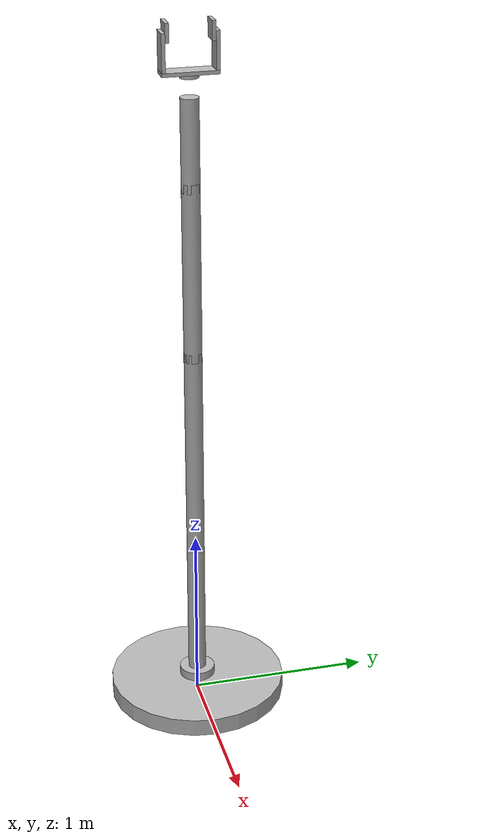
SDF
<?xml version='1.0'?>
<sdf version='1.4'>
  <model name="arm_robot">
  <static>false</static>
  <self_collide>1</self_collide>

   <link name='base'>
            <pose>0 0 .05 0 0 0</pose>
            <inertial>
            <mass>50</mass>
            </inertial>

            <collision name='collision'>
              <geometry>
                <cylinder>
                  <radius>0.5</radius>
                  <length>.1</length>
                </cylinder>
              </geometry>
            </collision>

            <visual name='visual'>
              <geometry>
              <cylinder>
               <radius>0.5</radius>
                <length>.1</length>
                </cylinder>
              </geometry>
            </visual>
    </link>

    <joint name="arm1_base_joint" type="revolute">
        <parent>base</parent>
        <child>arm1</child>
        <pose>0 0 -0.025 0 0 0</pose>
        <axis>
          <xyz>0 0 1</xyz>
          <dynamics>
                    <damping>2.0</damping>
                    <friction>0.7</friction>
                </dynamics>
                <limit>
                    <effort>100</effort>
                    <velocity>1.0</velocity>
                </limit>
        </axis>

    </joint>

    <link name='arm1'>
            <pose>0 0 .125 0 0 0</pose>
            <inertial>
                <mass>.05</mass>
            </inertial>

            <collision name='collision'>
              <geometry>
                <cylinder>
                  <radius>0.1</radius>
                  <length>.05</length>
                </cylinder>
          </geometry>
            </collision>

            <visual name='visual'>
              <geometry>
              <cylinder>
               <radius>0.1</radius>
                <length>.05</length>
                </cylinder>
              </geometry>
            </visual>
    </link>

    <!--dynamics>> damping=constanct coefficient, friction, limit=lower, upper, effort, velocity-->

     <link name='arm2'>
            <pose>0 0 1.15 0 0 0</pose>
             <inertial>
                <mass>0.5</mass>
            </inertial>
            <collision name='collision'>
              <geometry>
                <cylinder>
                  <radius>0.05</radius>
                  <length>2</length>
                </cylinder>
              </geometry>
            </collision>

            <visual name='visual'>
              <geometry>
              <cylinder>
               <radius>0.05</radius>
                <length>2</length>
                </cylinder>
              </geometry>
            </visual>
      </link>

      <joint name="arm1_arm2_joint" type="revolute">
        <parent>arm1</parent>
        <child>arm2</child>
        <pose>0 0 -1 0 0 0</pose>
        <axis>
          <xyz>1 0 0</xyz>
            <dynamics>
                    <damping>1.0</damping>
                    <friction>0.3</friction>
                </dynamics>
                <limit>
                    <lower>-1.0</lower>
                    <upper>1.0</upper>
                    <effort>100</effort>
                    <velocity>1.0</velocity>
                </limit>
        </axis>
    </joint>

     <link name='arm3'>
            <pose>0 0 2.6 0 0 0</pose>
             <inertial>
                <mass>0.25</mass>
            </inertial>
            <collision name='collision'>
              <geometry>
                <cylinder>
                  <radius>0.05</radius>
                  <length>1</length>
                </cylinder>
              </geometry>
            </collision>

            <visual name='visual'>
              <geometry>
              <cylinder>
               <radius>0.05</radius>
                <length>1</length>
                </cylinder>
              </geometry>
            </visual>
      </link>

      <joint name="arm2_arm3_joint" type="revolute">
        <parent>arm2</parent>
        <child>arm3</child>
        <pose>0 0 -0.5 0 0 0</pose>
        <axis>
          <xyz>1 0 0</xyz>
           <dynamics>
                    <damping>1.0</damping>
                    <friction>0.3</friction>
                </dynamics>
                <limit>
                    <effort>100</effort>
                    <velocity>1.0</velocity>
                </limit>
        </axis>

    </joint>

       <link name='arm4'>
            <pose>0 0 3.3 0 0 0</pose>
            <inertial>
                <mass>.125</mass>
            </inertial>

            <collision name='collision'>
              <geometry>
                <cylinder>
                  <radius>0.05</radius>
                  <length>0.5</length>
                </cylinder>
              </geometry>
            </collision>

            <visual name='visual'>
              <geometry>
              <cylinder>
               <radius>0.05</radius>
                <length>0.5</length>
                </cylinder>
              </geometry>
            </visual>
      </link>

      <joint name="arm3_arm4_joint" type="revolute">
        <parent>arm3</parent>
        <child>arm4</child>
        <pose>0 0 -0.25 0 0 0</pose>
        <axis>
          <xyz>1 0 0</xyz>
          <dynamics>
                    <damping>1.0</damping>
                    <friction>0.3</friction>
                </dynamics>
                <limit>
                    <effort>100</effort>
                    <velocity>1.0</velocity>
                </limit>
        </axis>
    </joint>

    <link name="arm5">
            <pose>0 0 3.66 0 0 0</pose>
            <inertial>
                <mass>.005</mass>
            </inertial>
            <collision name="collision">
                <geometry>
                    <cylinder>
                        <radius>.05</radius>
                        <length>.02</length>
                    </cylinder>
                </geometry>
            </collision>
            <visual name="visual">
                <geometry>
                    <cylinder>
                        <radius>.05</radius>
                        <length>.02</length>
                    </cylinder>
                </geometry>
            </visual>
        </link>

        <link name="arm6">
            <pose>0 0 3.68 0 0 0</pose>
            <inertial>
                <mass>.005</mass>
            </inertial>
            <collision name="collision">
                <geometry>
                    <box>
                        <size>.1 .3 .02</size>
                    </box>
                </geometry>
            </collision>
            <visual name="visual">
                <geometry>
                    <box>
                        <size>.1 .3 .02</size>
                    </box>
                </geometry>
            </visual>
        </link>

         <joint name="arm5_arm6_joint" type="revolute">
            <parent> arm5 </parent>
            <child> arm6 </child>
            <pose> 0 0 -0.01 0 0 0</pose>
            <axis>
                <xyz> 1 0 0  </xyz>
                <dynamics>
                    <damping>1.0</damping>
                    <friction>0.3</friction>
                </dynamics>
                <limit>
                    <effort>100</effort>
                    <velocity>1.0</velocity>
                </limit>
            </axis>
        </joint>

        <link name="arm7">
            <pose>0 0.14 3.79 0 0 0</pose>
            <inertial>
                <mass>.005</mass>
            </inertial>
            <collision name="collision">
                <geometry>
                    <box>
                        <size>.1 .02 .2</size>
                    </box>
                </geometry>
                <surface>
                    <friction>
                        <ode>
                            <mu>500</mu>
                            <mu2>500</mu2>
                            <slip1>0.0</slip1>
                            <slip2>0.0</slip2>
                        </ode>
                    </friction>
                </surface>
            </collision>
            <visual name="visual">
                <geometry>
                    <box>
                        <size>.1 .02 .2</size>
                    </box>
                </geometry>
            </visual>
      </link>
         <joint name="arm6_arm7_joint" type="revolute">
            <parent> arm6 </parent>
            <child> arm7 </child>
            <pose> 0 0 -0.1 0 0 0</pose>
            <axis>
                <xyz> 1 0 0</xyz>
                <dynamics>
                    <damping>1.0</damping>
                    <friction>0.3</friction>
                </dynamics>
                <limit>
                    <lower>-0.7</lower>
                    <upper>0.7</upper>
                    <effort>100</effort>
                    <velocity>1.0</velocity>
                </limit>
            </axis>
        </joint>

        <link name="arm8">
            <pose>0 -0.14 3.79 0 0 0</pose>
            <inertial>
                <mass>.005</mass>
            </inertial>
            <collision name="collision">
                <geometry>
                    <box>
                        <size>.1 .02 .2</size>
                    </box>
                </geometry>
                <surface>
                    <friction>
                        <ode>
                            <mu>500</mu>
                            <mu2>500</mu2>
                            <slip1>0.0</slip1>
                            <slip2>0.0</slip2>
                        </ode>
                    </friction>
                </surface>
            </collision>
            <visual name="visual">
                <geometry>
                    <box>
                        <size>.1 .02 .2</size>
                    </box>
                </geometry>
            </visual>
        </link>

         <joint name="arm6_arm8_joint" type="revolute">
            <parent> arm6 </parent>
            <child> arm8 </child>
            <pose> 0 0 -0.1 0 0 0</pose>
            <axis>
                <xyz> 1 0 0 </xyz>
                <dynamics>
                    <damping>1.0</damping>
                    <friction>0.3</friction>
                </dynamics>
                <limit>
                    <lower>-0.7</lower>
                    <upper>0.7</upper>
                    <effort>100</effort>
                    <velocity>1.0</velocity>
                </limit>
            </axis>
        </joint>

        <link name="arm9">
            <pose>0 0.12 3.89 0 0 0</pose>
            <inertial>
                <mass>.005</mass>
            </inertial>
            <collision name="collision">
                <geometry>
                    <box>
                        <size>.1 .02 .1</size>
                    </box>
                </geometry>
                <surface>
                    <friction>
                        <ode>
                            <mu>500</mu>
                            <mu2>500</mu2>
                            <slip1>0.0</slip1>
                            <slip2>0.0</slip2>
                        </ode>
                    </friction>
                </surface>
            </collision>
            <visual name="visual">
                <geometry>
                    <box>
                        <size>.1 .02 .1</size>
                    </box>
                </geometry>
            </visual>
        </link>
        <joint name="arm7_arm9_joint" type="revolute">
            <parent> arm7 </parent>
            <child> arm9 </child>
            <pose> 0 0 0 0 0 0</pose>
            <axis>
                <xyz> 1 0 0 </xyz>
                <dynamics>
                    <damping>1.0</damping>
                    <friction>0.3</friction>
                </dynamics>
                <limit>
                    <lower>-0.7</lower>
                    <upper>0.7</upper>
                    <effort>100</effort>
                    <velocity>1.0</velocity>
                </limit>
            </axis>
        </joint>

        <link name="arm10">
            <pose>0 -0.12 3.89 0 0 0</pose>
            <inertial>
                <mass>.005</mass>
            </inertial>
            <collision name="collision">
                <geometry>
                    <box>
                        <size>.1 .02 .1</size>
                    </box>
                </geometry>
                <surface>
                    <friction>
                        <ode>
                            <mu>500</mu>
                            <mu2>500</mu2>
                            <slip1>0.0</slip1>
                            <slip2>0.0</slip2>
                        </ode>
                    </friction>
                </surface>
            </collision>
            <visual name="visual">
                <geometry>
                    <box>
                        <size>.1 .02 .1</size>
                    </box>
                </geometry>
            </visual>
        </link>
        <joint name="arm8_arm10_joint" type="revolute">
            <parent> arm8 </parent>
            <child> arm10 </child>
            <pose> 0 0 0 0 0 0</pose>
            <axis>
                <xyz> 1 0 0 </xyz>
                <dynamics>
                    <damping>1.0</damping>
                    <friction>0.3</friction>
                </dynamics>
                <limit>
                    <lower>-0.7</lower>
                    <upper>0.7</upper>
                    <effort>100</effort>
                    <velocity>1.0</velocity>
                </limit>
            </axis>
        </joint>

        <plugin name="arm_control" filename="libarm_gazebo.so" />
        <plugin name="arm_control" filename="libgripper_controller.so" />
  </model>

</sdf>
